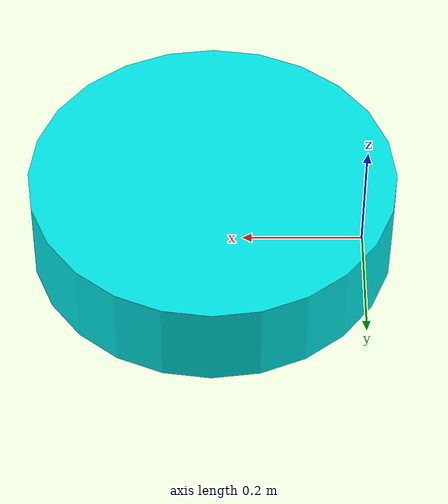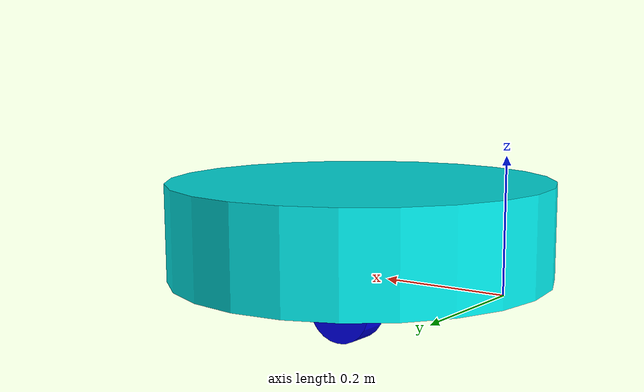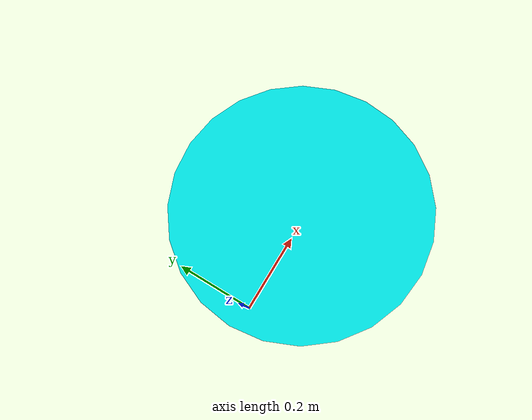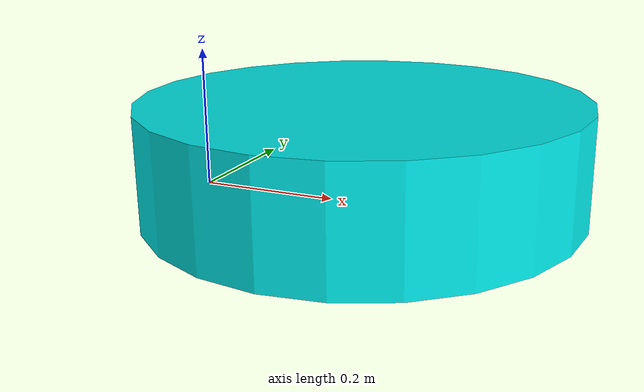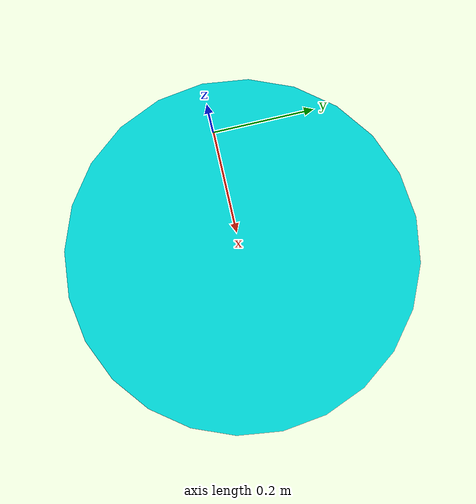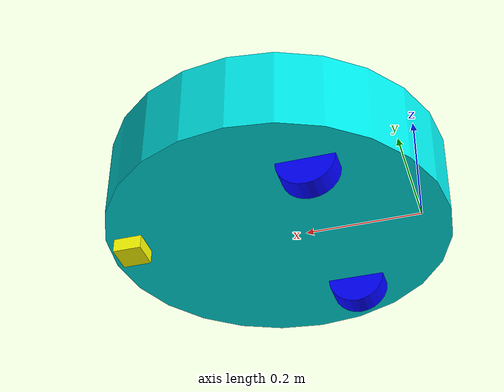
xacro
<robot xmlns:xacro="http://www.ros.org/wiki/xacro">

    <xacro:include filename="inertial_macros.xacro"/>

	<!-- * * * Link Definitions * * * -->

 	<link name="base_link">
        <origin xyz="0.15 0.0 0.0" rpy="0.0 0.0 0.0"/>
	</link>

    <joint name="chassis_joint" type="fixed">
        <origin xyz="0.1 0.0 0.0" rpy="0.0 0.0 0.0"/>
        <parent link="base_link"/>
        <child link="chassis"/>
        <axis xyz="0.0 0.0 0.0"/>
        <limit lower="0.0" upper="0.0" effort="0.0" velocity="0.0"/>
    </joint>

    <link name="chassis">
        <visual name="">
            <origin xyz="0.15 0.0 0.075" rpy="0.0 0.0 0.0"/>
            <geometry>
                <cylinder radius="0.3" length="0.15"/>
            </geometry>
            <material name="c">
                <color rgba="0 0.9 0.9 1.0"/>
            </material>
        </visual>
        <xacro:inertial_cylinder mass="0.5" length="0.15" radius="0.3">
            <origin xyz="0.15 0.0 0.075" rpy="0.0 0.0 0.0"/>
        </xacro:inertial_cylinder>
    </link>

    <joint name="left_wheel_joint" type="revolute">
        <origin xyz="0.15 0.175 0.0" rpy="-1.57 0.0 0.0"/>
        <parent link="base_link"/>
        <child link="left_wheel"/>
        <axis xyz="0.0 0.0 1"/>
        <limit lower="-5" upper="5" effort="0.0" velocity="0.0"/>
    </joint>

    <link name="left_wheel">
        <visual name="">
            <geometry>
                <cylinder radius="0.05" length="0.04"/>
            </geometry>
            <material name="blue">
                <color rgba="0.0 0.0 1.0 1.0"/>
            </material>
        </visual>
        <xacro:inertial_cylinder mass="0.1" length="0.04" radius="0.05">
            <origin xyz="0.0 0.0 0.0" rpy="0.0 0.0 0.0"/>
        </xacro:inertial_cylinder>
    </link>

    <joint name="right_wheel_joint" type="revolute">
        <origin xyz="0.15 -0.175 0.0" rpy="1.57 0.0 0.0"/>
        <parent link="base_link"/>
        <child link="right_wheel"/>
        <axis xyz="0.0 0.0 -1"/>
        <limit lower="-5" upper="5" effort="0.0" velocity="0.0"/>
    </joint>

    <link name="right_wheel">
        <visual name="">
            <geometry>
                <cylinder radius="0.05" length="0.04"/>
            </geometry>
            <material name="blue">
                <color rgba="0.0 0.0 1.0 1.0"/>
            </material>
        </visual>
        <xacro:inertial_cylinder mass="0.1" length="0.04" radius="0.05">
            <origin xyz="0.0 0.0 0.0" rpy="0.0 0.0 0.0"/>
        </xacro:inertial_cylinder>
    </link>

    <joint name="caster_joint" type="fixed">
        <origin xyz="0.4 0.0 0.0" rpy="0.0 0.0 0.0"/>
        <parent link="chassis"/>
        <child link="castor"/>
        <axis xyz="0.0 0.0 0.0"/>
        <limit lower="0.0" upper="0.0" effort="0.0" velocity="0.0"/>
    </joint>

    <link name="castor">
        <visual name="">
            <origin xyz="0.0 0.05 0.0" rpy="0.0 0.0 0.0"/>
            <geometry>
                <box size="0.05 0.05 0.05"/>
            </geometry>
            <material name="orange">
                <color rgba="1.0 1.0 0.0 1.0"/>
            </material>
        </visual>
        <xacro:inertial_box mass="0.1" x="0.05" y="0.05" z="0.05">
            <origin xyz="0.0 0.0 0.0" rpy="0.0 0.0 0.0"/>
        </xacro:inertial_box>
    </link>

</robot>
